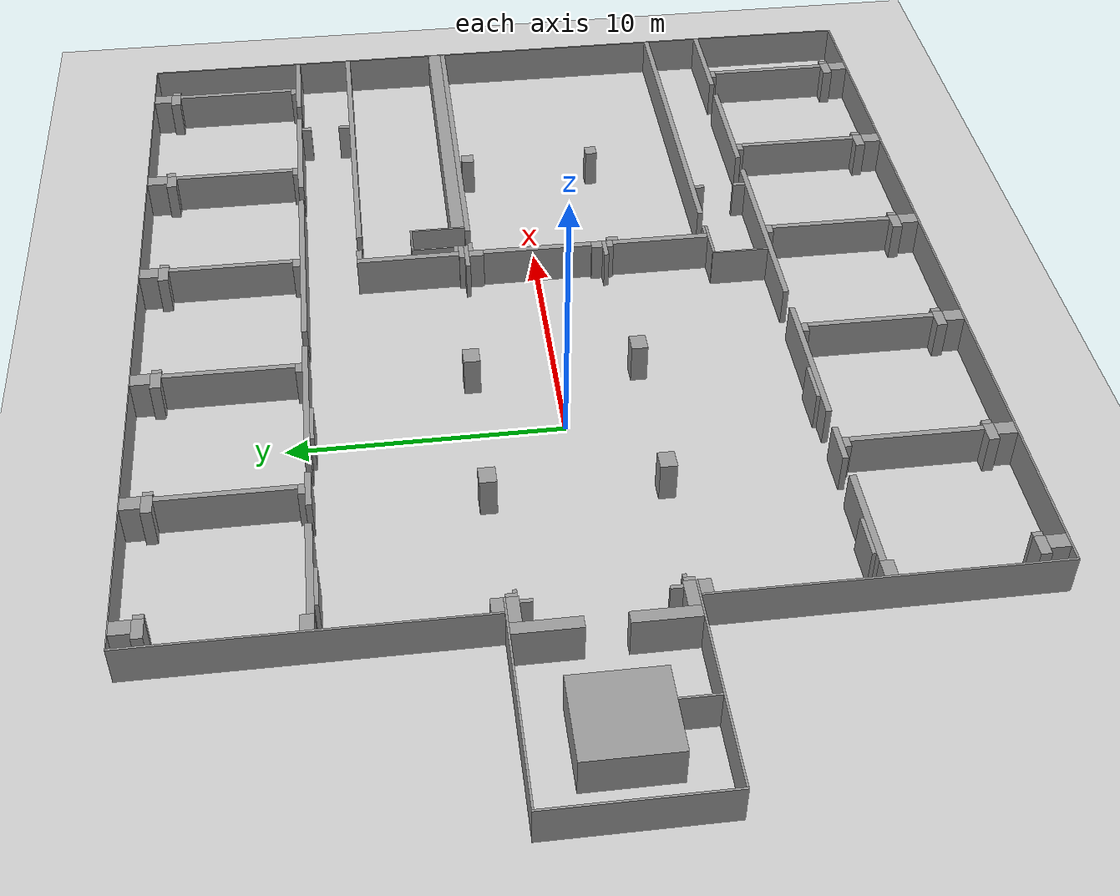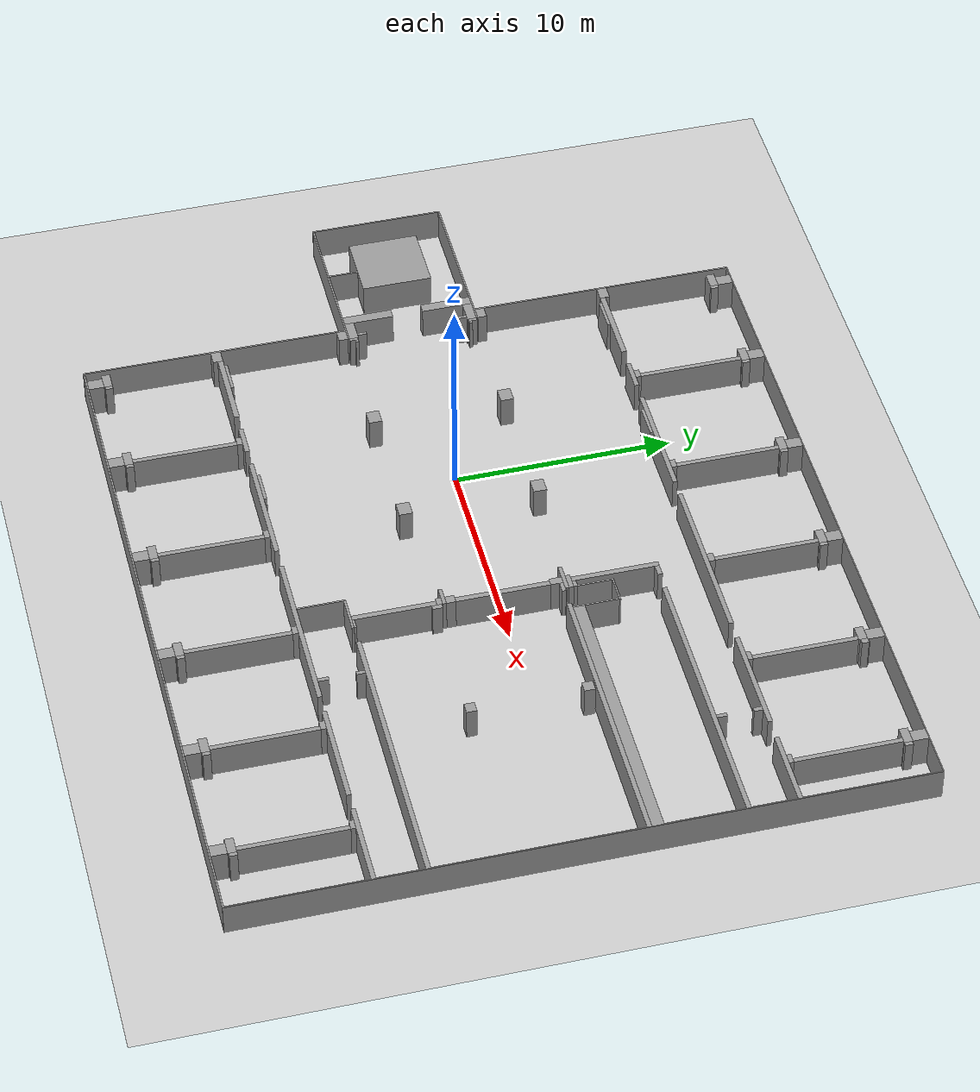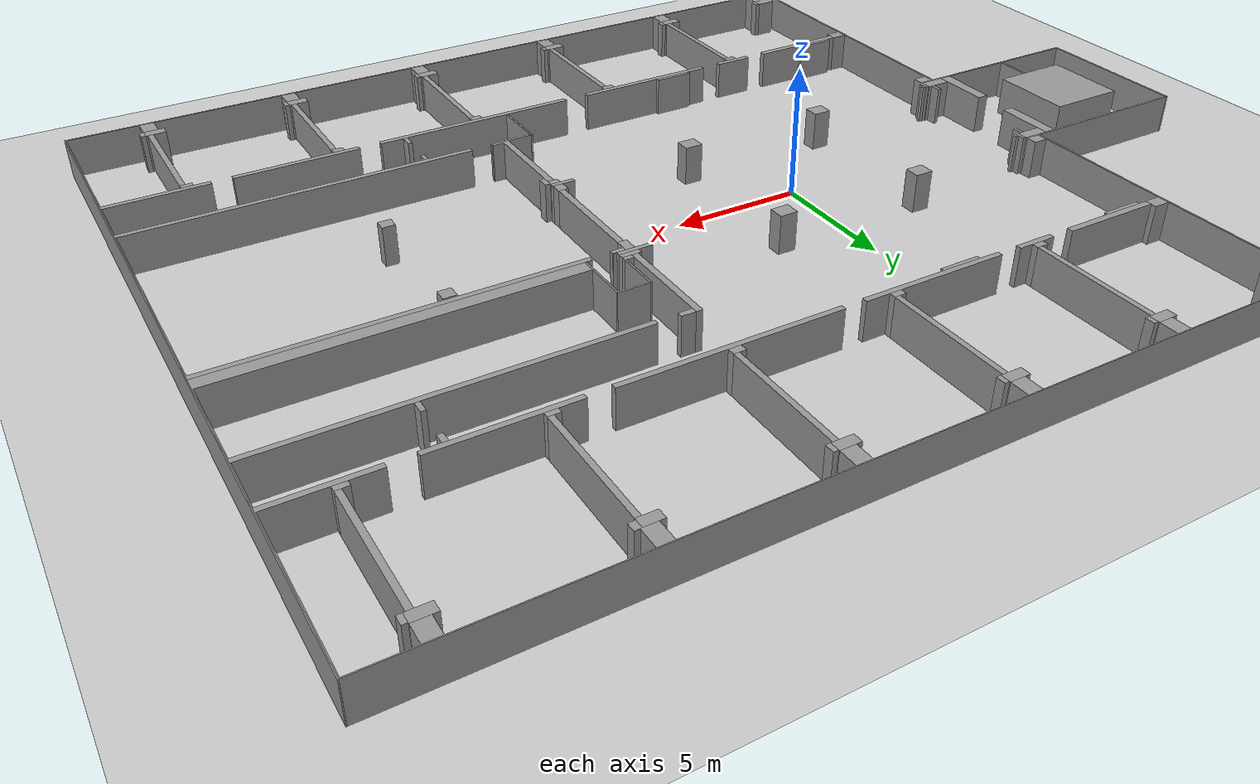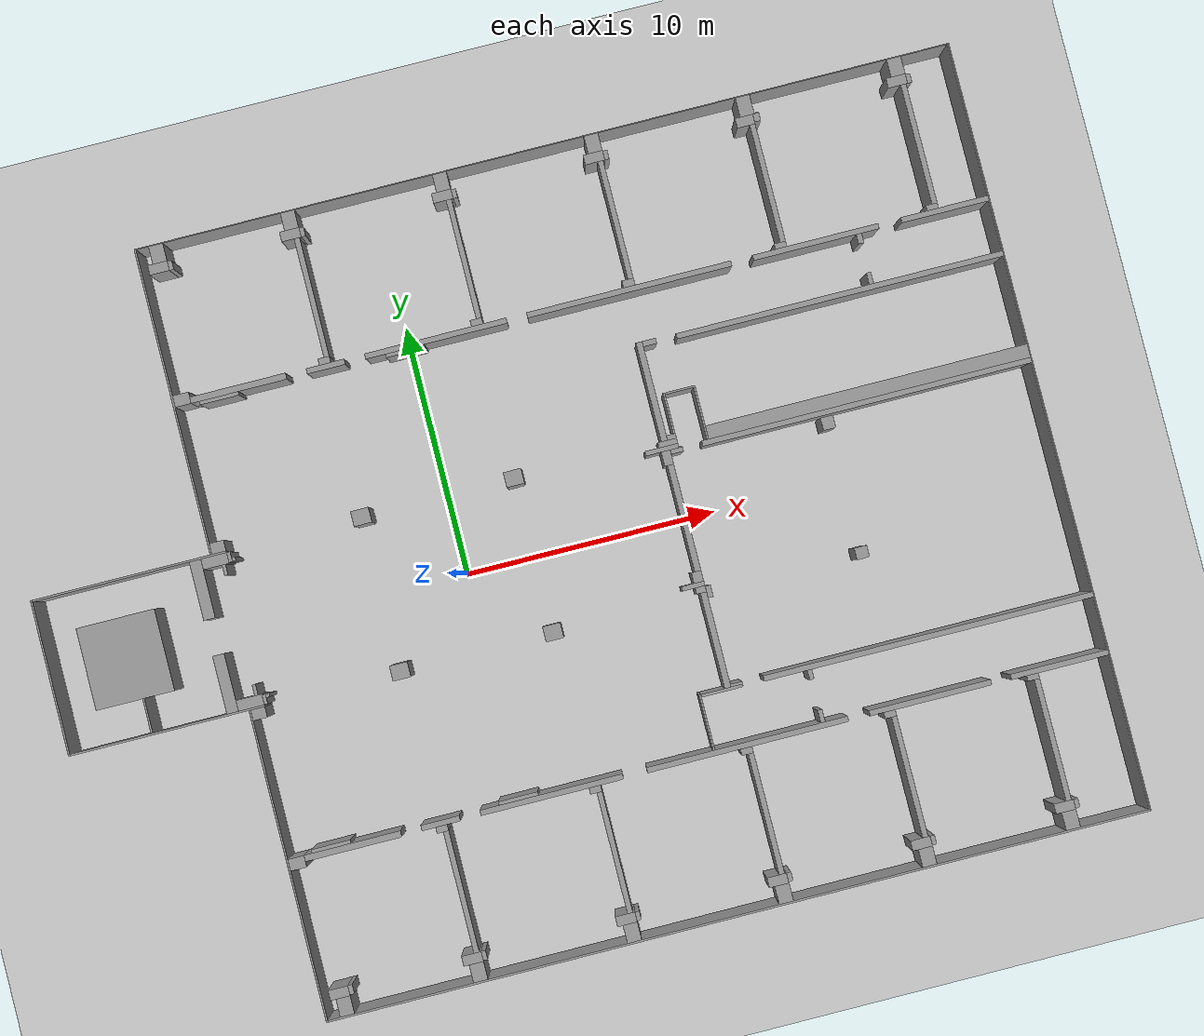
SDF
<sdf version='1.4'>
  <world name='default'>
    <!-- Default physics configuration -->
    <physics type='ode'>
      <gravity>0.000000 0.000000 -9.810000</gravity>
      <ode>
        <solver>
          <type>quick</type>
          <iters>20</iters>
          <sor>1.000000</sor>
        </solver>
        <constraints>
          <cfm>0.000000</cfm>
          <erp>0.200000</erp>
          <contact_max_correcting_vel>100.000000</contact_max_correcting_vel>
          <contact_surface_layer>0.000000</contact_surface_layer>
        </constraints>
      </ode>
      <real_time_update_rate>1000.000000</real_time_update_rate>
      <max_step_size>0.001000</max_step_size>
      <real_time_factor>1.000000</real_time_factor>
      <max_contacts>20</max_contacts>
    </physics>

    <!-- A global light source -->
    <include>
      <uri>model://sun</uri>
    </include>

    <!-- A ground plane -->
    <include>
      <uri>model://ground_plane</uri>
    </include>

    <!-- Walls -->
    <include>
      <uri>model://bauman</uri>
      <name>walls</name>
      <pose>-16.5 -15.3 0 0 0 1.5708</pose>
    </include>

    <!-- Camera Position -->
    <gui fullscreen='0'>
      <camera name='user_camera'>
        <pose>5.694260 7.254210 18.725000 0.000000 1.145800 -3.134990</pose>
        <view_controller>orbit</view_controller>
      </camera>
    </gui>
  </world>
</sdf>
